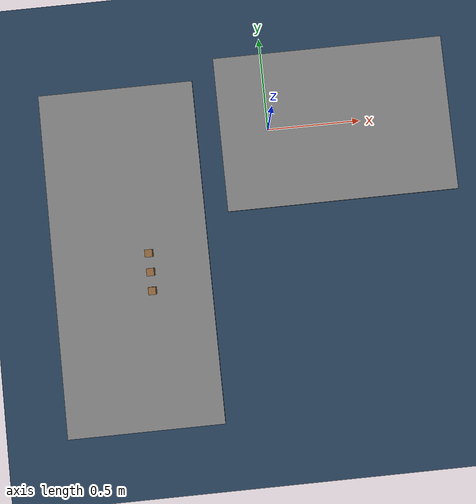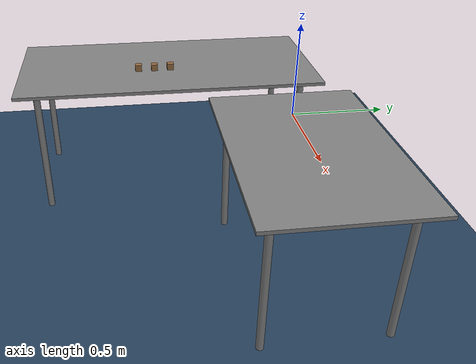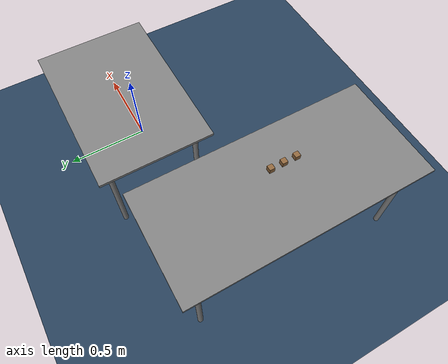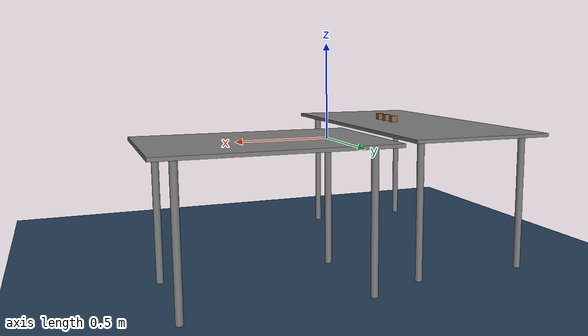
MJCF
<mujoco model="tableworld">
    <compiler eulerseq="XYZ"/>
    <statistic center="0.3 0 0.4" extent="0.8"/>

    <visual>
        <headlight diffuse="0.6 0.6 0.6" ambient="0.1 0.1 0.1"/>
        <rgba haze="0.15 0.25 0.35 1"/>
        <global azimuth="120" elevation="-20" offwidth="1280" offheight="720"/>
    </visual>

    <asset>
        <texture type="skybox" builtin="gradient" rgb1="0.3 0.5 0.7" rgb2="0 0 0" width="512" height="3072"/>
        <texture type="2d" name="groundplane" builtin="checker" mark="edge" rgb1="0.2 0.3 0.4" rgb2="0.1 0.2 0.3" markrgb="0.8 0.8 0.8" width="300" height="300"/>
        <material name="groundplane" texture="groundplane" texuniform="true" texrepeat="5 5" reflectance="0.2"/>

        <texture name="wood" file="wood.png" type="2d"/>
        <material name="wood_material" texture="wood" texrepeat="50 50" texuniform="true" rgba="0.8 0.8 0.8 1"/>
    </asset>

    <worldbody>
        <light pos="0 0 1.5" dir="0 0 -1" directional="true"/>

        <geom name="floor" pos="0.0 0.0 -0.8" size="0 0 0.05" type="plane" material="groundplane"/>

<!--         Tables and Walls-->
        <body name="table1" pos="0.365 0 -0.005">
            <geom name="table1_top" type="box" size="0.625 0.42 0.01" pos="0 0 0"/>
            <geom name="table1_leg_1" type="cylinder" size=".02 .4" pos=".5 -.33 -.4" euler="0 0 0"/>
            <geom name="table1_leg_2" type="cylinder" size=".02 .4" pos=".5 .33 -.4" euler="0 0 0"/>
            <geom name="table1_leg_3" type="cylinder" size=".02 .4" pos="-.5 -.33 -.4" euler="0 0 0"/>
            <geom name="table1_leg_4" type="cylinder" size=".02 .4" pos="-.5 .33 -.4" euler="0 0 0"/>
        </body>

        <body name="table2" pos="-0.805 -0.615 -0.005">
            <geom name="table2_top" type="box" size="0.42 0.925 0.01" pos="0 0 0"/>
            <geom name="table2_leg_1" type="cylinder" size=".02 .4" pos=".33 -.8 -.4" euler="0 0 0"/>
            <geom name="table2_leg_2" type="cylinder" size=".02 .4" pos=".33 .8 -.4" euler="0 0 0"/>
            <geom name="table2_leg_3" type="cylinder" size=".02 .4" pos="-.33 -.8 -.4" euler="0 0 0"/>
            <geom name="table2_leg_4" type="cylinder" size=".02 .4" pos="-.33 .8 -.4" euler="0 0 0"/>
        </body>

        <!-- Blocks representing 'X' -->
        <body name="block0" pos="-0.7 -0.6 0.03" quat="0. 0. 1. 0.">
            <freejoint name="block0_fj"/>
            <geom type="box" size=".02 .02 .02" material="wood_material"/>
            <geom type="box" size=".02 .02 .02" rgba="1 0 0 1"/>

        </body>
        <body name="block1" pos="-0.7 -0.7 0.03" quat="0. 0. 1. 0.">
            <freejoint name="block1_fj"/>
            <geom type="box" size=".02 .02 .02"  material="wood_material"/>
           <geom type="box" size=".02 .02 .02" rgba="0 1 0 1"/>
        </body>
        <body name="block2" pos="-0.7 -0.8 0.03" quat="0. 0. 1. 0.">
            <freejoint name="block2_fj"/>
            <geom type="box" size=".02 .02 .02" material="wood_material"/>
            <geom type="box" size=".02 .02 .02" rgba="0 1 1 1"/>
        </body>

        <camera name="top-right" pos="1.3 -1.5 1.1" euler="1 0 1.1"/>

        <camera name="robot-cam" pos="1.3 -1.5 1.1" euler="1 0 1.1" fovy="60"/>
    </worldbody>
</mujoco>
